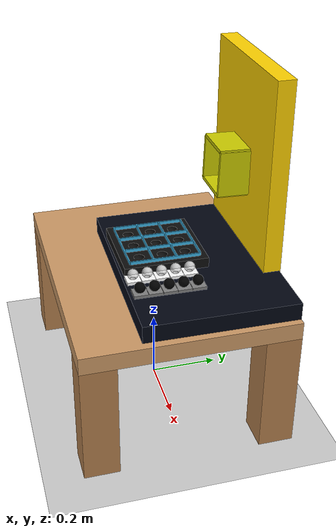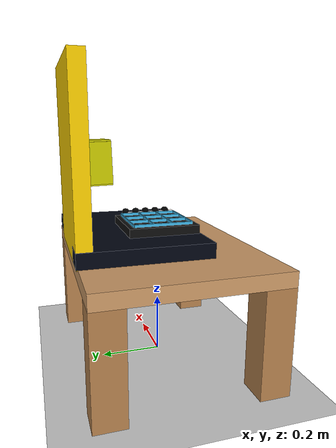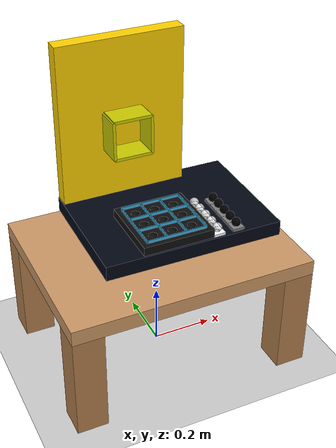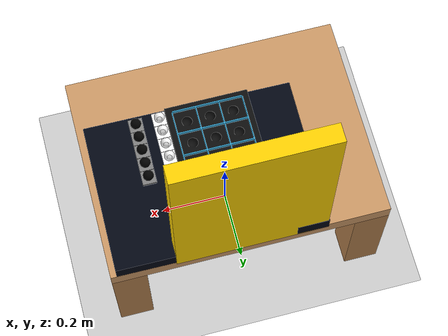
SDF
<sdf version="1.10">
 <world name="WORKINGPROTO">
  <physics name="1ms" type="ignored">
   <max_step_size>0.001</max_step_size>
   <real_time_factor>1</real_time_factor>
   <real_time_update_rate>1000</real_time_update_rate>
  </physics>
  <plugin name="gz::sim::systems::Physics" filename="gz-sim-physics-system"/>
  <plugin name="gz::sim::systems::UserCommands" filename="gz-sim-user-commands-system"/>
  <plugin name="gz::sim::systems::SceneBroadcaster" filename="gz-sim-scene-broadcaster-system"/>
  <gravity>0 0 -9.8000000000000007</gravity>
  <magnetic_field>5.5644999999999998e-06 2.2875799999999999e-05 -4.2388400000000002e-05</magnetic_field>
  <atmosphere type="adiabatic"/>
  <scene>
   <ambient>0.400000006 0.400000006 0.400000006 1</ambient>
   <background>0.699999988 0.699999988 0.699999988 1</background>
   <shadows>true</shadows>
  </scene>
  <model name="ground_plane">
   <static>true</static>
   <link name="link">
    <collision name="collision">
     <geometry><plane><normal>0 0 1</normal><size>100 100</size></plane></geometry>
     <surface>
      <contact><collide_bitmask>65535</collide_bitmask><ode><mu>100</mu><mu2>50</mu2></ode></contact>
      <friction><ode><mu>100</mu><mu2>50</mu2></ode></friction>
     </surface>
    </collision>
    <visual name="visual">
     <cast_shadows>false</cast_shadows>
     <geometry><plane><normal>0 0 1</normal><size>100 100</size></plane></geometry>
     <material>
      <ambient>0.800000012 0.800000012 0.800000012 1</ambient>
      <diffuse>0.800000012 0.800000012 0.800000012 1</diffuse>
      <specular>0 0 0 1</specular>
     </material>
    </visual>
    <inertial>
     <mass>1</mass>
     <inertia><ixx>1</ixx><ixy>0</ixy><ixz>0</ixz><iyy>1</iyy><iyz>0</iyz><izz>1</izz></inertia>
    </inertial>
   </link>
  </model>
  <model name="study_table">
   <static>true</static>
   <link name="table_link">
    <inertial>
     <mass>50</mass>
     <inertia><ixx>10</ixx><iyy>8</iyy><izz>6</izz><ixy>0</ixy><ixz>0</ixz><iyz>0</iyz></inertia>
    </inertial>
    <visual name="table_top">
     <pose>0 0 0.375 0 0 0</pose>
     <geometry><box><size>0.80000000000000004 0.59999999999999998 0.050000000000000003</size></box></geometry>
     <material>
      <ambient>0.800000012 0.600000024 0.400000006 1</ambient>
      <diffuse>0.800000012 0.600000024 0.400000006 1</diffuse>
     </material>
    </visual>
    <visual name="table_leg1">
     <pose>0.34999999999999998 0.25 0.17499999999999999 0 0 0</pose>
     <geometry><box><size>0.10000000000000001 0.10000000000000001 0.34999999999999998</size></box></geometry>
     <material>
      <ambient>0.699999988 0.5 0.300000012 1</ambient>
      <diffuse>0.699999988 0.5 0.300000012 1</diffuse>
     </material>
    </visual>
    <visual name="table_leg2">
     <pose>-0.34999999999999998 0.25 0.17499999999999999 0 0 0</pose>
     <geometry><box><size>0.10000000000000001 0.10000000000000001 0.34999999999999998</size></box></geometry>
     <material>
      <ambient>0.699999988 0.5 0.300000012 1</ambient>
      <diffuse>0.699999988 0.5 0.300000012 1</diffuse>
     </material>
    </visual>
    <visual name="table_leg3">
     <pose>0.34999999999999998 -0.25 0.17499999999999999 0 0 0</pose>
     <geometry><box><size>0.10000000000000001 0.10000000000000001 0.34999999999999998</size></box></geometry>
     <material>
      <ambient>0.699999988 0.5 0.300000012 1</ambient>
      <diffuse>0.699999988 0.5 0.300000012 1</diffuse>
     </material>
    </visual>
    <visual name="table_leg4">
     <pose>-0.34999999999999998 -0.25 0.17499999999999999 0 0 0</pose>
     <geometry><box><size>0.10000000000000001 0.10000000000000001 0.34999999999999998</size></box></geometry>
     <material>
      <ambient>0.699999988 0.5 0.300000012 1</ambient>
      <diffuse>0.699999988 0.5 0.300000012 1</diffuse>
     </material>
    </visual>
    <collision name="table_collision">
     <pose>0 0 0.375 0 0 0</pose>
     <geometry><box><size>0.80000000000000004 0.59999999999999998 0.050000000000000003</size></box></geometry>
    </collision>
   </link>
  </model>
  <model name="guard_rail">
   <static>true</static>
   <pose>-0.09491179883480072 -0.11964300274848938 0.44940531253814697 0 0 0</pose>
   <link name="rail_link">
    <inertial>
     <mass>10</mass>
     <inertia><ixx>1</ixx><iyy>1</iyy><izz>1</izz><ixy>0</ixy><ixz>0</ixz><iyz>0</iyz></inertia>
    </inertial>
    <visual name="rail_visual">
     <geometry>
      <mesh>
       <scale>0.001 0.001 0.001</scale>
       <uri>file:///home/sukritchopra/ros2_ws/src/jetrover_description/models/jetrover/meshes_1/EXTERNAL_MESHES/Guard_Rail.stl</uri>
      </mesh>
     </geometry>
     <material>
      <ambient>0.235294119 0.70588237 0.90196079 1</ambient>
      <diffuse>0.235294119 0.70588237 0.90196079 1</diffuse>
     </material>
    </visual>
    <collision name="rail_collision">
     <geometry>
      <mesh>
       <scale>0.001 0.001 0.001</scale>
       <uri>file:///home/sukritchopra/ros2_ws/src/jetrover_description/models/jetrover/meshes_1/EXTERNAL_MESHES/Guard_Rail.stl</uri>
      </mesh>
     </geometry>
    </collision>
   </link>
  </model>
  <model name="wall">
   <static>true</static>
   <pose>0 0.2800000011920929 0.8476068377494812 0 0 0</pose>
   <link name="wall_link">
    <inertial>
     <mass>20000000</mass>
     <inertia>
      <ixx>1.6699999999999999</ixx>
      <iyy>2.6699999999999999</iyy>
      <izz>1.0700000000000001</izz>
      <ixy>0</ixy>
      <ixz>0</ixz>
      <iyz>0</iyz>
     </inertia>
    </inertial>
    <visual name="wall_base">
     <pose>0 0 -0.14999999999999999 0 0 0</pose>
     <geometry><box><size>0.42999999999999999 0.050000000000000003 0.59999999999999998</size></box></geometry>
     <material><ambient>1 0.824000001 0 1</ambient><diffuse>1 0.824000001 0 1</diffuse></material>
    </visual>
    <collision name="wall_base_collision">
     <pose>0 0 -0.14999999999999999 0 0 0</pose>
     <geometry><box><size>0.42999999999999999 0.050000000000000003 0.59999999999999998</size></box></geometry>
    </collision>
   </link>
  </model>
  <model name="enclosure_floor">
   <static>true</static>
   <pose>0.23016500473022461 0.086331397294998169 0.42553699016571045 1.5699999781232279 -7.7078375414693577e-06 1.5605699752823259</pose>
   <link name="enclosure_floor_link">
    <inertial>
     <mass>20000000</mass>
     <inertia>
      <ixx>1.6699999999999999</ixx>
      <iyy>2.6699999999999999</iyy>
      <izz>1.0700000000000001</izz>
      <ixy>0</ixy>
      <ixz>0</ixz>
      <iyz>0</iyz>
     </inertia>
    </inertial>
    <visual name="enclosure_floor_base">
     <pose>0 0 -0.14999999999999999 0 0 0</pose>
     <geometry><box><size>0.42999999999999999 0.050000000000000003 0.59999999999999998</size></box></geometry>
     <material>
      <ambient>0 0.00400000019 0.0149999997 1</ambient>
      <diffuse>0.00400000019 0.0199999996 0.0700000003 1</diffuse>
     </material>
    </visual>
    <collision name="enclosure_floor_base_collision">
     <pose>0 0 -0.14999999999999999 0 0 0</pose>
     <geometry><box><size>0.42999999999999999 0.050000000000000003 0.59999999999999998</size></box></geometry>
    </collision>
   </link>
  </model>
  <model name="tictactoe_game">
   <static>true</static>
   <pose>-0.095262937247753143 -0.11987800151109697 0.44987368583679194 8.8383409608633161e-08 9.0853613316130457e-07 -0.00040046506437790825</pose>
   <link name="board">
    <inertial>
     <mass>2</mass>
     <inertia>
      <ixx>0.10000000000000001</ixx>
      <iyy>0.10000000000000001</iyy>
      <izz>0.10000000000000001</izz>
      <ixy>0</ixy>
      <ixz>0</ixz>
      <iyz>0</iyz>
     </inertia>
    </inertial>
    <visual name="board_visual">
     <geometry>
      <mesh>
       <scale>0.001 0.001 0.001</scale>
       <uri>file:///home/sukritchopra/ros2_ws/src/jetrover_description/models/jetrover/meshes_1/EXTERNAL_MESHES/TICTACTOE_BOARD2.stl</uri>
      </mesh>
     </geometry>
     <material>
      <ambient>0.0500000007 0.0500000007 0.0500000007 1</ambient>
      <diffuse>0.0500000007 0.0500000007 0.0500000007 1</diffuse>
     </material>
    </visual>
    <collision name="board_collision">
     <geometry>
      <mesh>
       <scale>0.001 0.001 0.001</scale>
       <uri>file:///home/sukritchopra/ros2_ws/src/jetrover_description/models/jetrover/meshes_1/EXTERNAL_MESHES/TICTACTOE_BOARD2.stl</uri>
      </mesh>
     </geometry>
    </collision>
   </link>
  </model>
  <model name="o_piece_1">
   <static>false</static>
   <pose>0.23159830623805791 -0.09952185038622903 0.47221307373438171 1.0995709571313959 0.00095308558416804694 0.17904546068479552</pose>
   <link name="o_link">
    <inertial>
     <mass>0.050000000000000003</mass>
     <inertia><ixx>0.001</ixx><iyy>0.001</iyy><izz>0.001</izz><ixy>0</ixy><ixz>0</ixz><iyz>0</iyz></inertia>
    </inertial>
    <visual name="o_visual">
     <geometry><sphere><radius>0.014999999999999999</radius></sphere></geometry>
     <material><ambient>0 0 0 1</ambient><diffuse>0 0 0 1</diffuse></material>
    </visual>
    <collision name="o_collision">
     <geometry><sphere><radius>0.014999999999999999</radius></sphere></geometry>
    </collision>
   </link>
  </model>
  <model name="o_piece_2">
   <static>false</static>
   <pose>0.23249538638418943 -0.019526879532150404 0.47221307394546541 0.088689746174547626 -0.13120681837544163 -0.045392773863535088</pose>
   <link name="o_link">
    <inertial>
     <mass>0.050000000000000003</mass>
     <inertia><ixx>0.001</ixx><iyy>0.001</iyy><izz>0.001</izz><ixy>0</ixy><ixz>0</ixz><iyz>0</iyz></inertia>
    </inertial>
    <visual name="o_visual">
     <geometry><sphere><radius>0.014999999999999999</radius></sphere></geometry>
     <material><ambient>0 0 0 1</ambient><diffuse>0 0 0 1</diffuse></material>
    </visual>
    <collision name="o_collision">
     <geometry><sphere><radius>0.014999999999999999</radius></sphere></geometry>
    </collision>
   </link>
  </model>
  <model name="o_piece_3">
   <static>false</static>
   <pose>0.23339246705211894 0.060468089669198831 0.47221307362051468 -0.27274701956931674 0.064102751708314823 0.0092227886135950211</pose>
   <link name="o_link">
    <inertial>
     <mass>0.050000000000000003</mass>
     <inertia><ixx>0.001</ixx><iyy>0.001</iyy><izz>0.001</izz><ixy>0</ixy><ixz>0</ixz><iyz>0</iyz></inertia>
    </inertial>
    <visual name="o_visual">
     <geometry><sphere><radius>0.014999999999999999</radius></sphere></geometry>
     <material><ambient>0 0 0 1</ambient><diffuse>0 0 0 1</diffuse></material>
    </visual>
    <collision name="o_collision">
     <geometry><sphere><radius>0.014999999999999999</radius></sphere></geometry>
    </collision>
   </link>
  </model>
  <model name="o_piece_4">
   <static>false</static>
   <pose>0.2320468449050605 -0.05952436753752547 0.47221307570212417 -2.5700416516823572 -0.15571004925837079 -2.2897427161842097</pose>
   <link name="o_link">
    <inertial>
     <mass>0.050000000000000003</mass>
     <inertia><ixx>0.001</ixx><iyy>0.001</iyy><izz>0.001</izz><ixy>0</ixy><ixz>0</ixz><iyz>0</iyz></inertia>
    </inertial>
    <visual name="o_visual">
     <geometry><sphere><radius>0.014999999999999999</radius></sphere></geometry>
     <material><ambient>0 0 0 1</ambient><diffuse>0 0 0 1</diffuse></material>
    </visual>
    <collision name="o_collision">
     <geometry><sphere><radius>0.014999999999999999</radius></sphere></geometry>
    </collision>
   </link>
  </model>
  <model name="o_piece_5">
   <static>false</static>
   <pose>0.2329439228767699 0.020470605320202191 0.47221307257772605 0.032322822150774463 -0.16598670986723774 0.060802325941976938</pose>
   <link name="o_link">
    <inertial>
     <mass>0.050000000000000003</mass>
     <inertia><ixx>0.001</ixx><iyy>0.001</iyy><izz>0.001</izz><ixy>0</ixy><ixz>0</ixz><iyz>0</iyz></inertia>
    </inertial>
    <visual name="o_visual">
     <geometry><sphere><radius>0.014999999999999999</radius></sphere></geometry>
     <material><ambient>0 0 0 1</ambient><diffuse>0 0 0 1</diffuse></material>
    </visual>
    <collision name="o_collision">
     <geometry><sphere><radius>0.014999999999999999</radius></sphere></geometry>
    </collision>
   </link>
  </model>
  <model name="robot_box">
   <static>true</static>
   <pose>0 0.21924400329589844 0.68879997730255127 1.5400002335725291 0 0</pose>
   <link name="box_link">
    <inertial>
     <mass>5</mass>
     <inertia>
      <ixx>0.10000000000000001</ixx>
      <iyy>0.10000000000000001</iyy>
      <izz>0.10000000000000001</izz>
      <ixy>0</ixy>
      <ixz>0</ixz>
      <iyz>0</iyz>
     </inertia>
    </inertial>
    <visual name="front_wall">
     <pose>0.065000000000000002 0 0 0 0 0</pose>
     <geometry><box><size>0.01 0.13 0.105</size></box></geometry>
     <material>
      <ambient>0.800000012 0.800000012 3.00000003e-09 1</ambient>
      <diffuse>0.800000012 0.800000012 3.00000003e-09 1</diffuse>
     </material>
    </visual>
    <collision name="front_wall_collision">
     <pose>0.065000000000000002 0 0 0 0 0</pose>
     <geometry><box><size>0.01 0.13 0.105</size></box></geometry>
    </collision>
    <visual name="back_wall">
     <pose>-0.065000000000000002 0 0 0 0 0</pose>
     <geometry><box><size>0.01 0.13 0.105</size></box></geometry>
     <material>
      <ambient>0.800000012 0.800000012 3.00000003e-09 1</ambient>
      <diffuse>0.800000012 0.800000012 3.00000003e-09 1</diffuse>
     </material>
    </visual>
    <collision name="back_wall_collision">
     <pose>-0.065000000000000002 0 0 0 0 0</pose>
     <geometry><box><size>0.01 0.13 0.105</size></box></geometry>
    </collision>
    <visual name="left_wall">
     <pose>0 0.065000000000000002 0 0 0 0</pose>
     <geometry><box><size>0.13 0.01 0.105</size></box></geometry>
     <material>
      <ambient>0.800000012 0.800000072 3.00000003e-09 1</ambient>
      <diffuse>0.800000012 0.800000012 3.00000003e-09 1</diffuse>
     </material>
    </visual>
    <collision name="left_wall_collision">
     <pose>0 0.065000000000000002 0 0 0 0</pose>
     <geometry><box><size>0.13 0.01 0.105</size></box></geometry>
    </collision>
    <visual name="right_wall">
     <pose>0 -0.065000000000000002 0 0 0 0</pose>
     <geometry><box><size>0.13 0.01 0.105</size></box></geometry>
     <material>
      <ambient>0.800000012 0.800000012 3.00000003e-09 1</ambient>
      <diffuse>0.800000012 0.800000012 3.00000003e-09 1</diffuse>
     </material>
    </visual>
    <collision name="right_wall_collision">
     <pose>0 -0.065000000000000002 0 0 0 0</pose>
     <geometry><box><size>0.13 0.01 0.105</size></box></geometry>
    </collision>
   </link>
  </model>
  <model name="x_piece_1">
   <static>false</static>
   <pose>0.16319281260477275 -0.061911279765136114 0.47234891156316916 0.1223994909888137 0.28434956714227444 -0.033673739149725407</pose>
   <link name="x_link">
    <inertial>
     <mass>0.050000000000000003</mass>
     <inertia><ixx>0.001</ixx><iyy>0.001</iyy><izz>0.001</izz><ixy>0</ixy><ixz>0</ixz><iyz>0</iyz></inertia>
    </inertial>
    <visual name="x_visual">
     <geometry><sphere><radius>0.014999999999999999</radius></sphere></geometry>
     <material><ambient>1 1 1 0.800000012</ambient><diffuse>1 1 1 0.800000012</diffuse></material>
    </visual>
    <collision name="x_collision">
     <geometry><sphere><radius>0.014999999999999999</radius></sphere></geometry>
    </collision>
   </link>
  </model>
  <model name="x_piece_2">
   <static>false</static>
   <pose>0.16315572920997085 0.018088699395670788 0.47234890892907772 0.018095080744559837 0.074140713199517497 -0.060699804274176927</pose>
   <link name="x_link">
    <inertial>
     <mass>0.050000000000000003</mass>
     <inertia><ixx>0.001</ixx><iyy>0.001</iyy><izz>0.001</izz><ixy>0</ixy><ixz>0</ixz><iyz>0</iyz></inertia>
    </inertial>
    <visual name="x_visual">
     <geometry><sphere><radius>0.014999999999999999</radius></sphere></geometry>
     <material><ambient>1 1 1 0.800000012</ambient><diffuse>1 1 1 0.800000012</diffuse></material>
    </visual>
    <collision name="x_collision">
     <geometry><sphere><radius>0.014999999999999999</radius></sphere></geometry>
    </collision>
   </link>
  </model>
  <model name="x_piece_3">
   <static>false</static>
   <pose>0.16313717018578772 0.058088707814606864 0.47234891271602841 -0.48344623307500051 0.13856040976189293 -0.19131024015282355</pose>
   <link name="x_link">
    <inertial>
     <mass>0.050000000000000003</mass>
     <inertia><ixx>0.001</ixx><iyy>0.001</iyy><izz>0.001</izz><ixy>0</ixy><ixz>0</ixz><iyz>0</iyz></inertia>
    </inertial>
    <visual name="x_visual">
     <geometry><sphere><radius>0.014999999999999999</radius></sphere></geometry>
     <material><ambient>1 1 1 0.800000012</ambient><diffuse>1 1 1 0.800000012</diffuse></material>
    </visual>
    <collision name="x_collision">
     <geometry><sphere><radius>0.014999999999999999</radius></sphere></geometry>
    </collision>
   </link>
  </model>
  <model name="x_piece_4">
   <static>false</static>
   <pose>0.16321135478896034 -0.10191127479404284 0.47234891260596507 0.2110225253398309 0.11792138950662219 -0.015971307564342448</pose>
   <link name="x_link">
    <inertial>
     <mass>0.050000000000000003</mass>
     <inertia><ixx>0.001</ixx><iyy>0.001</iyy><izz>0.001</izz><ixy>0</ixy><ixz>0</ixz><iyz>0</iyz></inertia>
    </inertial>
    <visual name="x_visual">
     <geometry><sphere><radius>0.014999999999999999</radius></sphere></geometry>
     <material><ambient>1 1 1 0.800000012</ambient><diffuse>1 1 1 0.800000012</diffuse></material>
    </visual>
    <collision name="x_collision">
     <geometry><sphere><radius>0.014999999999999999</radius></sphere></geometry>
    </collision>
   </link>
  </model>
  <model name="x_piece_5">
   <static>false</static>
   <pose>0.16317426273247784 -0.021911284322578727 0.47234891293090853 -0.29125003578424552 0.052569613436969177 -0.043049819535494069</pose>
   <link name="x_link">
    <inertial>
     <mass>0.050000000000000003</mass>
     <inertia><ixx>0.001</ixx><iyy>0.001</iyy><izz>0.001</izz><ixy>0</ixy><ixz>0</ixz><iyz>0</iyz></inertia>
    </inertial>
    <visual name="x_visual">
     <geometry><sphere><radius>0.014999999999999999</radius></sphere></geometry>
     <material><ambient>1 1 1 0.800000012</ambient><diffuse>1 1 1 0.800000012</diffuse></material>
    </visual>
    <collision name="x_collision">
     <geometry><sphere><radius>0.014999999999999999</radius></sphere></geometry>
    </collision>
   </link>
  </model>
  <model name="ball_store_grey">
   <static>true</static>
   <pose>0.21361799538135526 0.080691099166870089 0.44921416044235229 0 0 -1.5820100666549128</pose>
   <link name="ball_store_link">
    <inertial>
     <mass>1</mass>
     <inertia>
      <ixx>0.10000000000000001</ixx>
      <iyy>0.10000000000000001</iyy>
      <izz>0.10000000000000001</izz>
      <ixy>0</ixy>
      <ixz>0</ixz>
      <iyz>0</iyz>
     </inertia>
    </inertial>
    <visual name="ball_store_visual">
     <geometry>
      <mesh>
       <scale>0.001 0.001 0.001</scale>
       <uri>file:///home/sukritchopra/ros2_ws/src/jetrover_description/models/jetrover/meshes_1/EXTERNAL_MESHES/ballstore.stl</uri>
      </mesh>
     </geometry>
     <material><ambient>0.5 0.5 0.5 1</ambient><diffuse>0.5 0.5 0.5 1</diffuse></material>
    </visual>
    <collision name="ball_store_collision">
     <geometry>
      <mesh>
       <scale>0.001 0.001 0.001</scale>
       <uri>file:///home/sukritchopra/ros2_ws/src/jetrover_description/models/jetrover/meshes_1/EXTERNAL_MESHES/ballstore.stl</uri>
      </mesh>
     </geometry>
    </collision>
   </link>
  </model>
  <model name="ball_store_white">
   <static>true</static>
   <pose>0.18322062492370605 -0.12190199643373488 0.44934999942779541 0 0 1.5712599811587429</pose>
   <link name="ball_store_link">
    <inertial>
     <mass>1</mass>
     <inertia>
      <ixx>0.10000000000000001</ixx>
      <iyy>0.10000000000000001</iyy>
      <izz>0.10000000000000001</izz>
      <ixy>0</ixy>
      <ixz>0</ixz>
      <iyz>0</iyz>
     </inertia>
    </inertial>
    <visual name="ball_store_visual">
     <geometry>
      <mesh>
       <scale>0.001 0.001 0.001</scale>
       <uri>file:///home/sukritchopra/ros2_ws/src/jetrover_description/models/jetrover/meshes_1/EXTERNAL_MESHES/ballstore.stl</uri>
      </mesh>
     </geometry>
     <material><ambient>1 1 1 1</ambient><diffuse>1 1 1 1</diffuse></material>
    </visual>
    <collision name="ball_store_collision">
     <geometry>
      <mesh>
       <scale>0.001 0.001 0.001</scale>
       <uri>file:///home/sukritchopra/ros2_ws/src/jetrover_description/models/jetrover/meshes_1/EXTERNAL_MESHES/ballstore.stl</uri>
      </mesh>
     </geometry>
    </collision>
   </link>
  </model>
  <light name="sun" type="directional">
   <pose>0 0 10 0 0 0</pose>
   <intensity>1</intensity>
   <direction>-0.5 0.10000000000000001 -0.90000000000000002</direction>
   <diffuse>0.800000012 0.800000012 0.800000012 1</diffuse>
   <specular>0.200000003 0.200000003 0.200000003 1</specular>
   <attenuation>
    <range>1000</range>
    <linear>0.0099999997764825821</linear>
    <constant>0.89999997615814209</constant>
    <quadratic>0.0010000000474974513</quadratic>
   </attenuation>
   <spot><inner_angle>0</inner_angle><outer_angle>0</outer_angle><falloff>0</falloff></spot>
  </light>
 </world>
</sdf>
